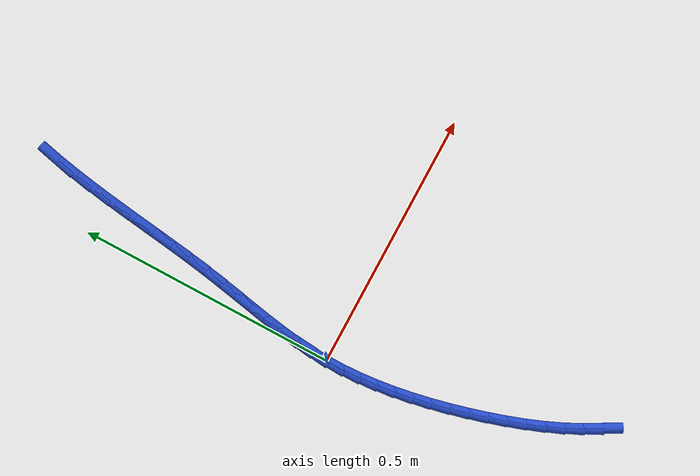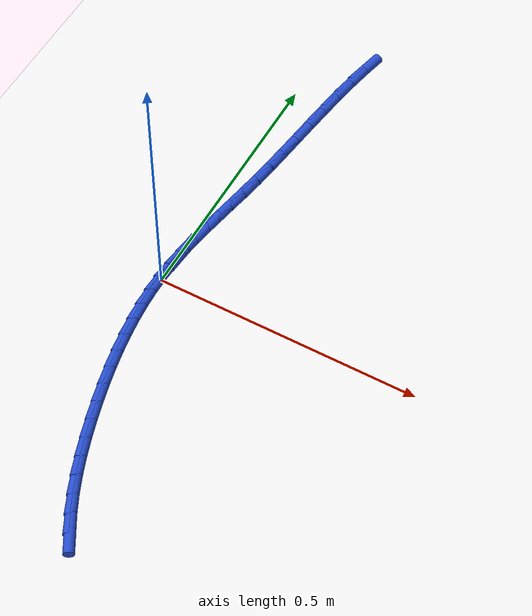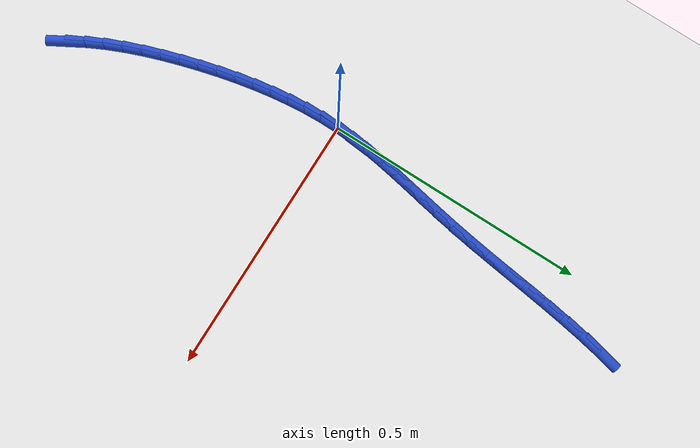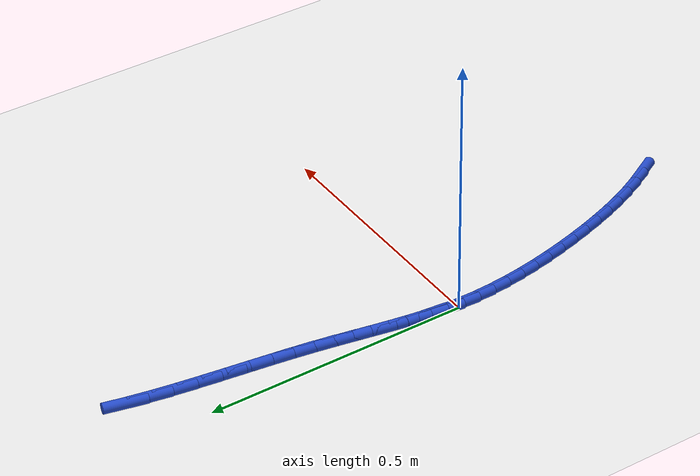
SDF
<sdf version="1.6">
 <world name="default">
  <model name="ground_plane">
   <static>1</static>
   <link name="link">
    <collision name="collision">
     <geometry><plane><normal>0 0 1</normal><size>100 100</size></plane></geometry>
     <surface><friction><ode><mu>100</mu><mu2>50</mu2></ode></friction></surface>
    </collision>
    <visual name="visual">
     <cast_shadows>0</cast_shadows>
     <geometry><plane><normal>0 0 1</normal><size>100 100</size></plane></geometry>
     <material>
      <script><uri>file://media/materials/scripts/gazebo.material</uri><name>Gazebo/WhiteGlow</name></script>
     </material>
    </visual>
   </link>
  </model>
  <model name="line">
   <link name="link_0">
    <pose>1.734723475976807e-18 6.245004513516506e-17 0.01 0 1.57 1.516494529502316</pose>
    <collision name="collision">
     <geometry><cylinder><radius>0.01</radius><length>0.08</length></cylinder></geometry>
    </collision>
    <visual name="visual">
     <material>
      <script><name>Gazebo/Blue</name><uri>file://media/materials/scripts/gazebo.material</uri></script>
     </material>
     <geometry><cylinder><radius>0.01</radius><length>0.08</length></cylinder></geometry>
    </visual>
   </link>
   <link name="link_1">
    <pose>0.0017694688169561143 0.03255378939449071 0.01 0 1.57 1.4710826064364122</pose>
    <collision name="collision">
     <geometry><cylinder><radius>0.01</radius><length>0.08</length></cylinder></geometry>
    </collision>
    <visual name="visual">
     <material>
      <script><name>Gazebo/Blue</name><uri>file://media/materials/scripts/gazebo.material</uri></script>
     </material>
     <geometry><cylinder><radius>0.01</radius><length>0.08</length></cylinder></geometry>
    </visual>
   </link>
   <link name="link_2">
    <pose>0.004998973465190106 0.06483414226333158 0.01 0 1.57 1.4345876731881326</pose>
    <collision name="collision">
     <geometry><cylinder><radius>0.01</radius><length>0.08</length></cylinder></geometry>
    </collision>
    <visual name="visual">
     <material>
      <script><name>Gazebo/Blue</name><uri>file://media/materials/scripts/gazebo.material</uri></script>
     </material>
     <geometry><cylinder><radius>0.01</radius><length>0.08</length></cylinder></geometry>
    </visual>
   </link>
   <link name="link_3">
    <pose>0.009429887435138591 0.09716305787593267 0.01 0 1.57 1.4079163147194615</pose>
    <collision name="collision">
     <geometry><cylinder><radius>0.01</radius><length>0.08</length></cylinder></geometry>
    </collision>
    <visual name="visual">
     <material>
      <script><name>Gazebo/Blue</name><uri>file://media/materials/scripts/gazebo.material</uri></script>
     </material>
     <geometry><cylinder><radius>0.01</radius><length>0.08</length></cylinder></geometry>
    </visual>
   </link>
   <link name="link_4">
    <pose>0.014803584217238173 0.12986253550170396 0.01 0 1.57 1.3913320808936984</pose>
    <collision name="collision">
     <geometry><cylinder><radius>0.01</radius><length>0.08</length></cylinder></geometry>
    </collision>
    <visual name="visual">
     <material>
      <script><name>Gazebo/Blue</name><uri>file://media/materials/scripts/gazebo.material</uri></script>
     </material>
     <geometry><cylinder><radius>0.01</radius><length>0.08</length></cylinder></geometry>
    </visual>
   </link>
   <link name="link_5">
    <pose>0.020861437301925464 0.16325457441005548 0.01 0 1.57 1.3845459777414224</pose>
    <collision name="collision">
     <geometry><cylinder><radius>0.01</radius><length>0.08</length></cylinder></geometry>
    </collision>
    <visual name="visual">
     <material>
      <script><name>Gazebo/Blue</name><uri>file://media/materials/scripts/gazebo.material</uri></script>
     </material>
     <geometry><cylinder><radius>0.01</radius><length>0.08</length></cylinder></geometry>
    </visual>
   </link>
   <link name="link_6">
    <pose>0.027344820179637068 0.1976611738703972 0.01 0 1.57 1.3868421602056382</pose>
    <collision name="collision">
     <geometry><cylinder><radius>0.01</radius><length>0.08</length></cylinder></geometry>
    </collision>
    <visual name="visual">
     <material>
      <script><name>Gazebo/Blue</name><uri>file://media/materials/scripts/gazebo.material</uri></script>
     </material>
     <geometry><cylinder><radius>0.01</radius><length>0.08</length></cylinder></geometry>
    </visual>
   </link>
   <link name="link_7">
    <pose>0.0339951063408096 0.2334043331521391 0.01 0 1.57 1.397206629142584</pose>
    <collision name="collision">
     <geometry><cylinder><radius>0.01</radius><length>0.08</length></cylinder></geometry>
    </collision>
    <visual name="visual">
     <material>
      <script><name>Gazebo/Blue</name><uri>file://media/materials/scripts/gazebo.material</uri></script>
     </material>
     <geometry><cylinder><radius>0.01</radius><length>0.08</length></cylinder></geometry>
    </visual>
   </link>
   <link name="link_8">
    <pose>0.04055366927587964 0.27080605152469117 0.01 0 1.57 1.414296138216688</pose>
    <collision name="collision">
     <geometry><cylinder><radius>0.01</radius><length>0.08</length></cylinder></geometry>
    </collision>
    <visual name="visual">
     <material>
      <script><name>Gazebo/Blue</name><uri>file://media/materials/scripts/gazebo.material</uri></script>
     </material>
     <geometry><cylinder><radius>0.01</radius><length>0.08</length></cylinder></geometry>
    </visual>
   </link>
   <link name="link_9">
    <pose>0.04676655816186803 0.31018033766741737 0.01 0 1.57 1.431066428718873</pose>
    <collision name="collision">
     <geometry><cylinder><radius>0.01</radius><length>0.08</length></cylinder></geometry>
    </collision>
    <visual name="visual">
     <material>
      <script><name>Gazebo/Blue</name><uri>file://media/materials/scripts/gazebo.material</uri></script>
     </material>
     <geometry><cylinder><radius>0.01</radius><length>0.08</length></cylinder></geometry>
    </visual>
   </link>
   <link name="link_10">
    <pose>0.0525783032457674 0.3515020028319896 0.01 0 1.57 1.4401218542389516</pose>
    <collision name="collision">
     <geometry><cylinder><radius>0.01</radius><length>0.08</length></cylinder></geometry>
    </collision>
    <visual name="visual">
     <material>
      <script><name>Gazebo/Blue</name><uri>file://media/materials/scripts/gazebo.material</uri></script>
     </material>
     <geometry><cylinder><radius>0.01</radius><length>0.08</length></cylinder></geometry>
    </visual>
   </link>
   <link name="link_11">
    <pose>0.058201377449199135 0.3942879533121111 0.01 0 1.57 1.4419638176945608</pose>
    <collision name="collision">
     <geometry><cylinder><radius>0.01</radius><length>0.08</length></cylinder></geometry>
    </collision>
    <visual name="visual">
     <material>
      <script><name>Gazebo/Blue</name><uri>file://media/materials/scripts/gazebo.material</uri></script>
     </material>
     <geometry><cylinder><radius>0.01</radius><length>0.08</length></cylinder></geometry>
    </visual>
   </link>
   <link name="link_12">
    <pose>0.06386721503722509 0.4380226911076072 0.01 0 1.57 1.4371112335914393</pose>
    <collision name="collision">
     <geometry><cylinder><radius>0.01</radius><length>0.08</length></cylinder></geometry>
    </collision>
    <visual name="visual">
     <material>
      <script><name>Gazebo/Blue</name><uri>file://media/materials/scripts/gazebo.material</uri></script>
     </material>
     <geometry><cylinder><radius>0.01</radius><length>0.08</length></cylinder></geometry>
    </visual>
   </link>
   <link name="link_13">
    <pose>0.069807250274907 0.4821907182183031 0.01 0 1.57 1.4256176986108482</pose>
    <collision name="collision">
     <geometry><cylinder><radius>0.01</radius><length>0.08</length></cylinder></geometry>
    </collision>
    <visual name="visual">
     <material>
      <script><name>Gazebo/Blue</name><uri>file://media/materials/scripts/gazebo.material</uri></script>
     </material>
     <geometry><cylinder><radius>0.01</radius><length>0.08</length></cylinder></geometry>
    </visual>
   </link>
   <link name="link_14">
    <pose>0.07625291742730675 0.5262765366440245 0.01 0 1.57 1.4071086520204896</pose>
    <collision name="collision">
     <geometry><cylinder><radius>0.01</radius><length>0.08</length></cylinder></geometry>
    </collision>
    <visual name="visual">
     <material>
      <script><name>Gazebo/Blue</name><uri>file://media/materials/scripts/gazebo.material</uri></script>
     </material>
     <geometry><cylinder><radius>0.01</radius><length>0.08</length></cylinder></geometry>
    </visual>
   </link>
   <link name="link_15">
    <pose>0.08343565075948611 0.5697646483845966 0.01 0 1.57 1.3807576732418159</pose>
    <collision name="collision">
     <geometry><cylinder><radius>0.01</radius><length>0.08</length></cylinder></geometry>
    </collision>
    <visual name="visual">
     <material>
      <script><name>Gazebo/Blue</name><uri>file://media/materials/scripts/gazebo.material</uri></script>
     </material>
     <geometry><cylinder><radius>0.01</radius><length>0.08</length></cylinder></geometry>
    </visual>
   </link>
   <link name="link_16">
    <pose>0.09158688453650689 0.6121395554398449 0.01 0 1.57 1.3452048609490905</pose>
    <collision name="collision">
     <geometry><cylinder><radius>0.01</radius><length>0.08</length></cylinder></geometry>
    </collision>
    <visual name="visual">
     <material>
      <script><name>Gazebo/Blue</name><uri>file://media/materials/scripts/gazebo.material</uri></script>
     </material>
     <geometry><cylinder><radius>0.01</radius><length>0.08</length></cylinder></geometry>
    </visual>
   </link>
   <link name="link_195">
    <pose>0.13011666574933745 -0.5022785412417262 0.01 0 1.57 -1.055545163525481</pose>
    <collision name="collision">
     <geometry><cylinder><radius>0.01</radius><length>0.08</length></cylinder></geometry>
    </collision>
    <visual name="visual">
     <material>
      <script><name>Gazebo/Blue</name><uri>file://media/materials/scripts/gazebo.material</uri></script>
     </material>
     <geometry><cylinder><radius>0.01</radius><length>0.08</length></cylinder></geometry>
    </visual>
   </link>
   <link name="link_196">
    <pose>0.11320115324041931 -0.47240689786988843 0.01 0 1.57 -1.1104756778441967</pose>
    <collision name="collision">
     <geometry><cylinder><radius>0.01</radius><length>0.08</length></cylinder></geometry>
    </collision>
    <visual name="visual">
     <material>
      <script><name>Gazebo/Blue</name><uri>file://media/materials/scripts/gazebo.material</uri></script>
     </material>
     <geometry><cylinder><radius>0.01</radius><length>0.08</length></cylinder></geometry>
    </visual>
   </link>
   <link name="link_197">
    <pose>0.09776267478961155 -0.44127140372301077 0.01 0 1.57 -1.1585120138916591</pose>
    <collision name="collision">
     <geometry><cylinder><radius>0.01</radius><length>0.08</length></cylinder></geometry>
    </collision>
    <visual name="visual">
     <material>
      <script><name>Gazebo/Blue</name><uri>file://media/materials/scripts/gazebo.material</uri></script>
     </material>
     <geometry><cylinder><radius>0.01</radius><length>0.08</length></cylinder></geometry>
    </visual>
   </link>
   <link name="link_198">
    <pose>0.08367895853830336 -0.40906899216352305 0.01 0 1.57 -1.2001745742411911</pose>
    <collision name="collision">
     <geometry><cylinder><radius>0.01</radius><length>0.08</length></cylinder></geometry>
    </collision>
    <visual name="visual">
     <material>
      <script><name>Gazebo/Blue</name><uri>file://media/materials/scripts/gazebo.material</uri></script>
     </material>
     <geometry><cylinder><radius>0.01</radius><length>0.08</length></cylinder></geometry>
    </visual>
   </link>
   <link name="link_199">
    <pose>0.07082773262788432 -0.37599659655385553 0.01 0 1.57 -1.2359680023982598</pose>
    <collision name="collision">
     <geometry><cylinder><radius>0.01</radius><length>0.08</length></cylinder></geometry>
    </collision>
    <visual name="visual">
     <material>
      <script><name>Gazebo/Blue</name><uri>file://media/materials/scripts/gazebo.material</uri></script>
     </material>
     <geometry><cylinder><radius>0.01</radius><length>0.08</length></cylinder></geometry>
    </visual>
   </link>
   <link name="link_200">
    <pose>0.059086725199744006 -0.34225115025643843 0.01 0 1.57 -1.266346286569514</pose>
    <collision name="collision">
     <geometry><cylinder><radius>0.01</radius><length>0.08</length></cylinder></geometry>
    </collision>
    <visual name="visual">
     <material>
      <script><name>Gazebo/Blue</name><uri>file://media/materials/scripts/gazebo.material</uri></script>
     </material>
     <geometry><cylinder><radius>0.01</radius><length>0.08</length></cylinder></geometry>
    </visual>
   </link>
   <link name="link_201">
    <pose>0.04833366439527202 -0.30802958663370206 0.01 0 1.57 -1.2919580855293544</pose>
    <collision name="collision">
     <geometry><cylinder><radius>0.01</radius><length>0.08</length></cylinder></geometry>
    </collision>
    <visual name="visual">
     <material>
      <script><name>Gazebo/Blue</name><uri>file://media/materials/scripts/gazebo.material</uri></script>
     </material>
     <geometry><cylinder><radius>0.01</radius><length>0.08</length></cylinder></geometry>
    </visual>
   </link>
   <link name="link_202">
    <pose>0.03845505206085932 -0.27352480673366186 0.01 0 1.57 -1.316856997184864</pose>
    <collision name="collision">
     <geometry><cylinder><radius>0.01</radius><length>0.08</length></cylinder></geometry>
    </collision>
    <visual name="visual">
     <material>
      <script><name>Gazebo/Blue</name><uri>file://media/materials/scripts/gazebo.material</uri></script>
     </material>
     <geometry><cylinder><radius>0.01</radius><length>0.08</length></cylinder></geometry>
    </visual>
   </link>
   <link name="link_203">
    <pose>0.029461371236103876 -0.23887273098413975 0.01 0 1.57 -1.3440678541002242</pose>
    <collision name="collision">
     <geometry><cylinder><radius>0.01</radius><length>0.08</length></cylinder></geometry>
    </collision>
    <visual name="visual">
     <material>
      <script><name>Gazebo/Blue</name><uri>file://media/materials/scripts/gazebo.material</uri></script>
     </material>
     <geometry><cylinder><radius>0.01</radius><length>0.08</length></cylinder></geometry>
    </visual>
   </link>
   <link name="link_204">
    <pose>0.021454945201871127 -0.20416707087971936 0.01 0 1.57 -1.3739173073975615</pose>
    <collision name="collision">
     <geometry><cylinder><radius>0.01</radius><length>0.08</length></cylinder></geometry>
    </collision>
    <visual name="visual">
     <material>
      <script><name>Gazebo/Blue</name><uri>file://media/materials/scripts/gazebo.material</uri></script>
     </material>
     <geometry><cylinder><radius>0.01</radius><length>0.08</length></cylinder></geometry>
    </visual>
   </link>
   <link name="link_205">
    <pose>0.014540260751063747 -0.16950054358468064 0.01 0 1.57 -1.40669937742208</pose>
    <collision name="collision">
     <geometry><cylinder><radius>0.01</radius><length>0.08</length></cylinder></geometry>
    </collision>
    <visual name="visual">
     <material>
      <script><name>Gazebo/Blue</name><uri>file://media/materials/scripts/gazebo.material</uri></script>
     </material>
     <geometry><cylinder><radius>0.01</radius><length>0.08</length></cylinder></geometry>
    </visual>
   </link>
   <link name="link_206">
    <pose>0.008821804676584378 -0.13496586626330312 0.01 0 1.57 -1.4427417358059849</pose>
    <collision name="collision">
     <geometry><cylinder><radius>0.01</radius><length>0.08</length></cylinder></geometry>
    </collision>
    <visual name="visual">
     <material>
      <script><name>Gazebo/Blue</name><uri>file://media/materials/scripts/gazebo.material</uri></script>
     </material>
     <geometry><cylinder><radius>0.01</radius><length>0.08</length></cylinder></geometry>
    </visual>
   </link>
   <link name="link_207">
    <pose>0.004404063771335666 -0.10065575607986664 0.01 0 1.57 -1.482404467669885</pose>
    <collision name="collision">
     <geometry><cylinder><radius>0.01</radius><length>0.08</length></cylinder></geometry>
    </collision>
    <visual name="visual">
     <material>
      <script><name>Gazebo/Blue</name><uri>file://media/materials/scripts/gazebo.material</uri></script>
     </material>
     <geometry><cylinder><radius>0.01</radius><length>0.08</length></cylinder></geometry>
    </visual>
   </link>
   <link name="link_208">
    <pose>0.0013915248282202666 -0.0666629301986508 0.01 0 1.57 -1.5260756039536159</pose>
    <collision name="collision">
     <geometry><cylinder><radius>0.01</radius><length>0.08</length></cylinder></geometry>
    </collision>
    <visual name="visual">
     <material>
      <script><name>Gazebo/Blue</name><uri>file://media/materials/scripts/gazebo.material</uri></script>
     </material>
     <geometry><cylinder><radius>0.01</radius><length>0.08</length></cylinder></geometry>
    </visual>
   </link>
   <link name="link_209">
    <pose>-0.00011132535985918391 -0.03308010578393458 0.01 0 1.57 1.5674310129013969</pose>
    <collision name="collision">
     <geometry><cylinder><radius>0.01</radius><length>0.08</length></cylinder></geometry>
    </collision>
    <visual name="visual">
     <material>
      <script><name>Gazebo/Blue</name><uri>file://media/materials/scripts/gazebo.material</uri></script>
     </material>
     <geometry><cylinder><radius>0.01</radius><length>0.08</length></cylinder></geometry>
    </visual>
   </link>
   <link name="link_210">
    <pose>1.0408340855860843e-17 -6.938893903907228e-18 0.01 0 1.57 1.5145219194232924</pose>
    <collision name="collision">
     <geometry><cylinder><radius>0.01</radius><length>0.08</length></cylinder></geometry>
    </collision>
    <visual name="visual">
     <material>
      <script><name>Gazebo/Blue</name><uri>file://media/materials/scripts/gazebo.material</uri></script>
     </material>
     <geometry><cylinder><radius>0.01</radius><length>0.08</length></cylinder></geometry>
    </visual>
   </link>
   <link name="link_211">
    <pose>0.0018299877007004473 0.03248466998887556 0.01 0 1.57 1.4564067794310678</pose>
    <collision name="collision">
     <geometry><cylinder><radius>0.01</radius><length>0.08</length></cylinder></geometry>
    </collision>
    <visual name="visual">
     <material>
      <script><name>Gazebo/Blue</name><uri>file://media/materials/scripts/gazebo.material</uri></script>
     </material>
     <geometry><cylinder><radius>0.01</radius><length>0.08</length></cylinder></geometry>
    </visual>
   </link>
   <link name="link_212">
    <pose>0.005483124535145014 0.06428118701841315 0.01 0 1.57 1.4857032495114693</pose>
    <collision name="collision">
     <geometry><cylinder><radius>0.01</radius><length>0.08</length></cylinder></geometry>
    </collision>
    <visual name="visual">
     <material>
      <script><name>Gazebo/Blue</name><uri>file://media/materials/scripts/gazebo.material</uri></script>
     </material>
     <geometry><cylinder><radius>0.01</radius><length>0.08</length></cylinder></geometry>
    </visual>
   </link>
  </model>
 </world>
</sdf>
